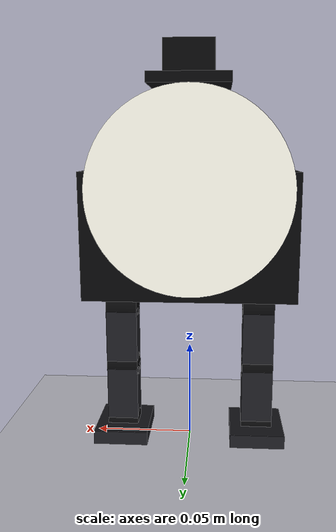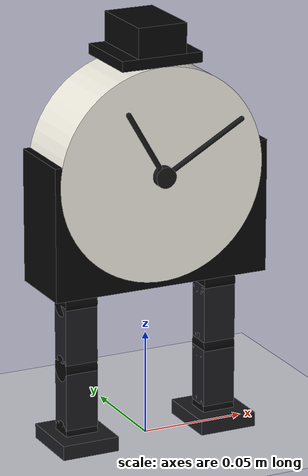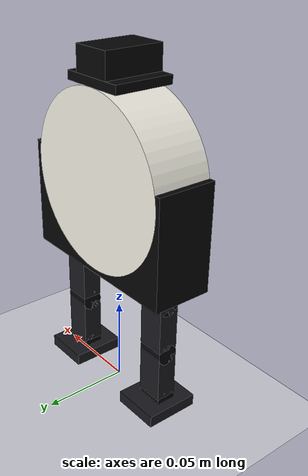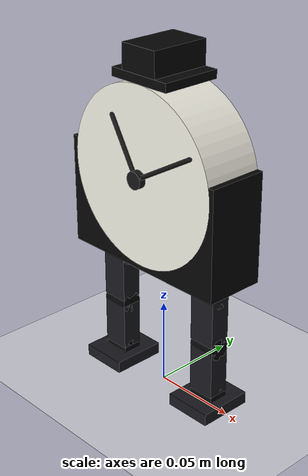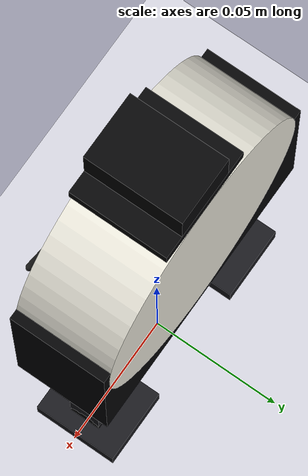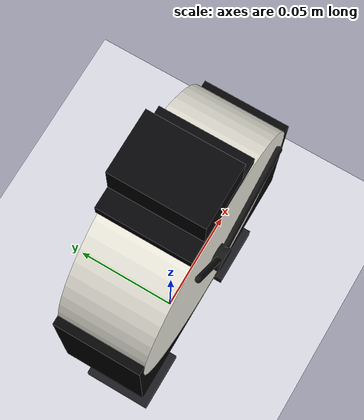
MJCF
<mujoco model="clive">
  <compiler angle="radian" coordinate="local" autolimits="true" meshdir="meshes"/>
  <option timestep="0.002" gravity="0 0 -9.81" integrator="implicitfast"/>

  <visual>
    <rgba haze="0.15 0.25 0.35 1"/>
    <global azimuth="-90" elevation="-15"/>
  </visual>

  <asset>
    <mesh name="cape_mesh" file="cape.stl"/>
    <mesh name="clock_mesh" file="clock_head.stl"/>
  </asset>

  <default>
    <joint damping="0.8" armature="0.01"/>
    <geom friction="1 0.05 0.01" density="500"/>
    <default class="leg">
      <geom rgba="0.10 0.10 0.12 1"/>
    </default>
    <default class="joint_pin">
      <geom rgba="0.02 0.02 0.025 1"/>
    </default>
    <default class="cape">
      <geom rgba="0.015 0.015 0.018 1" contype="0" conaffinity="0"/>
    </default>
    <default class="head">
      <geom rgba="0.94 0.93 0.88 1" contype="0" conaffinity="0"/>
    </default>
  </default>

  <worldbody>
    <light pos="0.3 -0.4 0.6" dir="-0.2 0.4 -1" diffuse="0.9 0.9 0.9"/>
    <light pos="-0.3 -0.4 0.6" dir="0.2 0.4 -1" diffuse="0.4 0.4 0.45"/>
    <geom name="ground" type="plane" size="1 1 0.05" rgba="0.82 0.82 0.86 1"/>

    <camera name="frontview" pos="0 -0.42 0.13" xyaxes="1 0 0  0 0 1"/>

    <body name="feet_base" pos="0 0 0.0035">
      <geom name="left_foot" class="leg" type="box" pos="-0.03556 0 0" size="0.014 0.016 0.0035"/>
      <geom name="right_foot" class="leg" type="box" pos="0.03556 0 0" size="0.014 0.016 0.0035"/>

      <body name="lower_legs" pos="0 0 0.0035">
        <joint name="ankle_pitch" type="hinge" axis="1 0 0" range="-1.2 1.2"/>

        <geom class="joint_pin" type="cylinder" fromto="-0.04356 0 0  -0.02756 0 0" size="0.006"/>
        <geom class="joint_pin" type="cylinder" fromto="0.02756 0 0  0.04356 0 0" size="0.006"/>
        <geom class="leg" type="box" pos="-0.03556 0 0.017" size="0.008 0.006 0.014"/>
        <geom class="leg" type="box" pos="0.03556 0 0.017" size="0.008 0.006 0.014"/>

        <body name="upper_legs" pos="0 0 0.032">
          <joint name="knee_pitch" type="hinge" axis="1 0 0" range="-1.5708 0"/>

          <geom class="joint_pin" type="cylinder" fromto="-0.04356 0 0  -0.02756 0 0" size="0.0062"/>
          <geom class="joint_pin" type="cylinder" fromto="0.02756 0 0  0.04356 0 0" size="0.0062"/>
          <geom class="leg" type="box" pos="-0.03556 0 0.017" size="0.008 0.006 0.014"/>
          <geom class="leg" type="box" pos="0.03556 0 0.017" size="0.008 0.006 0.014"/>

          <body name="hip_mount" pos="0 0 0.032">
            <geom class="joint_pin" type="cylinder" fromto="-0.04356 0 0  -0.02756 0 0" size="0.0064"/>
            <geom class="joint_pin" type="cylinder" fromto="0.02756 0 0  0.04356 0 0" size="0.0064"/>
            <geom class="joint_pin" type="cylinder" fromto="-0.03556 0 0.0005  -0.03556 0 0.0070" size="0.0052"/>
            <geom class="joint_pin" type="cylinder" fromto="0.03556 0 0.0005  0.03556 0 0.0070" size="0.0052"/>

            <body name="cape_body" pos="0 0 0.007">
              <joint name="hip_pitch" type="hinge" axis="1 0 0" range="-1.5708 1.5708"/>
              <inertial pos="0 0 0.03" mass="0.10"
                        diaginertia="0.00012 0.00012 0.00006"/>
              <geom class="cape" type="mesh" mesh="cape_mesh" pos="-0.00475 -0.0178 0"/>

              <!-- Clock head spins in place around its face axis (+Y). -->
              <body name="clock_head" pos="0 0 0.0533">
                <joint name="head_spin" type="hinge" axis="0 1 0" range="-1.0 1.0"/>
                <inertial pos="0 0 0" mass="0.12"
                          diaginertia="0.00012 0.00018 0.00012"/>
                <geom class="head" type="mesh" mesh="clock_mesh" pos="0 0.0178 0"/>
                <!-- Small top hat attached to the top of the clock cylinder. -->
                <geom name="top_hat_brim" type="box" rgba="0.02 0.02 0.025 1"
                      pos="0 0 0.0533" size="0.020 0.0178 0.0025"/>
                <geom name="top_hat_crown" type="box" rgba="0.02 0.02 0.025 1"
                      pos="0 0 0.0630" size="0.012 0.0178 0.0072"/>
                <geom type="capsule" rgba="0.08 0.08 0.08 1"
                      fromto="0 -0.020 0  -0.018 -0.020 0.0312" size="0.00125"/>
                <geom type="capsule" rgba="0.08 0.08 0.08 1"
                      fromto="0 -0.020 0   0.039 -0.020 0.0225" size="0.00125"/>
                <geom type="cylinder" rgba="0.08 0.08 0.08 1"
                      fromto="0 -0.018 0  0 -0.022 0" size="0.005"/>
              </body>
            </body>
          </body>
        </body>
      </body>
    </body>
  </worldbody>

  <actuator>
    <position name="ankle_pitch_pos" joint="ankle_pitch" kp="900" kv="36" ctrlrange="-1.2 1.2"/>
    <position name="knee_pitch_pos"  joint="knee_pitch"  kp="900" kv="36" ctrlrange="-1.5708 0"/>
    <position name="hip_pitch_pos"   joint="hip_pitch"   kp="900" kv="36" ctrlrange="-1.5708 1.5708"/>
    <position name="head_spin_pos"   joint="head_spin"   kp="300" kv="18" ctrlrange="-1.0 1.0"/>
  </actuator>
</mujoco>
